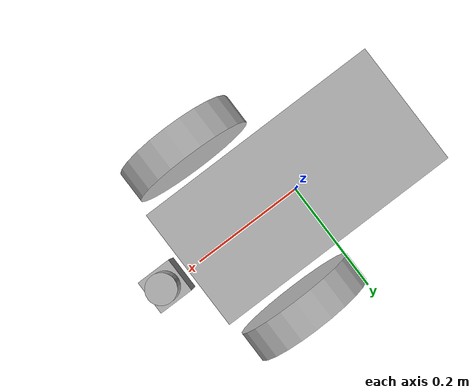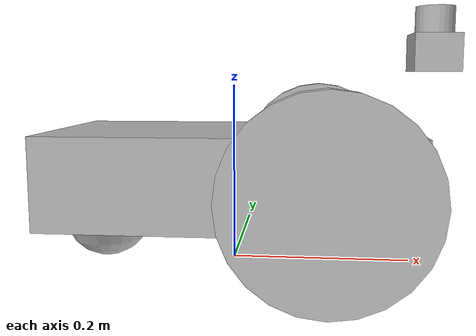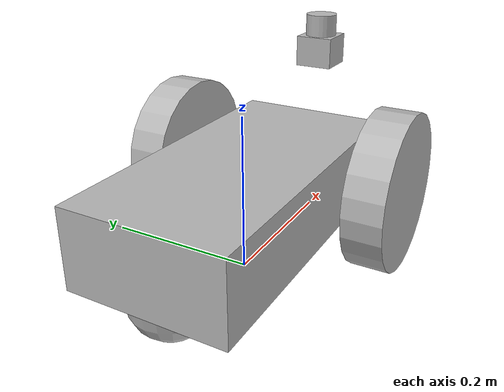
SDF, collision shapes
<?xml version='1.0'?>
<sdf version='1.4'>
  <model name="my_robot">
	<static>false</static>
	<link name='chassis'>
            <pose>0 0 .1 0 0 0</pose>

            <collision name='collision'>
              <geometry>
                <box>
                  <size>.4 .2 .1</size>
                </box>
              </geometry>
            </collision>

            <visual name='visual'>
	      <pose>0 0 0.07 0 0 0</pose>
              <geometry>
		<mesh>
		  <uri>model://pioneer2dx/meshes/chassis.dae</uri>
		  <scale>1 0.8 0.8</scale>
		</mesh>
	      </geometry>
            </visual>

	  <collision name='caster_collision'>
            <pose>-0.15 0 -0.05 0 0 0</pose>
            <geometry>
                <sphere>
                <radius>.05</radius>
              </sphere>
            </geometry>

            <surface>
              <friction>
                <ode>
                  <mu>0</mu>
                  <mu2>0</mu2>
                  <slip1>1.0</slip1>
                  <slip2>1.0</slip2>
                </ode>
              </friction>
            </surface>
          </collision>

          <visual name='caster_visual'>
            <pose>-0.15 0 -0.05 0 0 0</pose>
            <geometry>
              <sphere>
                <radius>.05</radius>
              </sphere>
            </geometry>
          </visual>
	</link>

	<link name="left_wheel">
        <pose>0.1 0.15 0.1 0 1.5707 1.5707</pose>
        <collision name="collision">
          <geometry>
            <cylinder>
              <radius>.1</radius>
              <length>.05</length>
            </cylinder>
          </geometry>
        </collision>
        <visual name="visual">
          <geometry>
            <cylinder>
              <radius>.1</radius>
              <length>.05</length>
            </cylinder>
          </geometry>
        </visual>
      </link>

	<link name="right_wheel">
        <pose>0.1 -0.15 0.1 0 1.5707 1.5707</pose>
        <collision name="collision">
          <geometry>
            <cylinder>
              <radius>.1</radius>
              <length>.05</length>
            </cylinder>
          </geometry>
        </collision>
        <visual name="visual">
          <geometry>
            <cylinder>
              <radius>.1</radius>
              <length>.05</length>
            </cylinder>
          </geometry>
        </visual>
      </link>

      <joint type="revolute" name="left_wheel_hinge">
        <pose>0 0 -0.03 0 0 0</pose>
        <child>left_wheel</child>
        <parent>chassis</parent>
        <axis>
          <xyz>0 1 0</xyz>
        </axis>
      </joint>

      <joint type="revolute" name="right_wheel_hinge">
        <pose>0 0 0.03 0 0 0</pose>
        <child>right_wheel</child>
        <parent>chassis</parent>
        <axis>
          <xyz>0 1 0</xyz>
        </axis>
      </joint>

    <include>
      <uri>model://hokuyo</uri>
      <pose>0.22 0 0.25 0 0 0</pose>
    </include>
    <joint name="hokuyo_joint" type="revolute">
      <child>hokuyo::link</child>
      <parent>chassis</parent>
      <axis>
        <xyz>0 0 1</xyz>
        <limit>
          <upper>0</upper>
          <lower>0</lower>
        </limit>
      </axis>
    </joint>

  </model>
</sdf>

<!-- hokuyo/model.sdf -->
<sdf version="1.5">
  <model name="hokuyo">
    <pose>0 0 0.035 0 0 0</pose>
    <link name="link">
      <inertial>
        <mass>0.1</mass>
      </inertial>
      <visual name="visual">
        <geometry>
          <mesh>
            <uri>model://../model_source/models/hokuyo/meshes/hokuyo.dae</uri>
          </mesh>
        </geometry>
      </visual>
      <collision name="collision-base">
        <pose>0 0 -0.0145 0 0 0</pose>
        <geometry>
          <box>
            <size>0.05 0.05 0.041</size>
          </box>
        </geometry>
      </collision>
      <collision name="collision-top">
        <pose>0 0 0.0205 0 0 0</pose>
        <geometry>
          <cylinder>
            <radius>0.021</radius>
            <length>0.029</length>
          </cylinder>
        </geometry>
      </collision>
      <sensor name="laser" type="ray">
        <pose>0.01 0 0.0175 0 -0 0</pose>
        <ray>
          <scan>
            <horizontal>
              <samples>640</samples>
              <resolution>1</resolution>
              <min_angle>-2.26889</min_angle>
              <max_angle>2.268899</max_angle>
            </horizontal>
          </scan>
          <range>
            <min>0.08</min>
            <max>10</max>
            <resolution>0.01</resolution>
          </range>
        </ray>
        <plugin name="laser" filename="libRayPlugin.so" />
        <always_on>1</always_on>
        <update_rate>30</update_rate>
        <visualize>true</visualize>
      </sensor>
    </link>
  </model>
</sdf>
